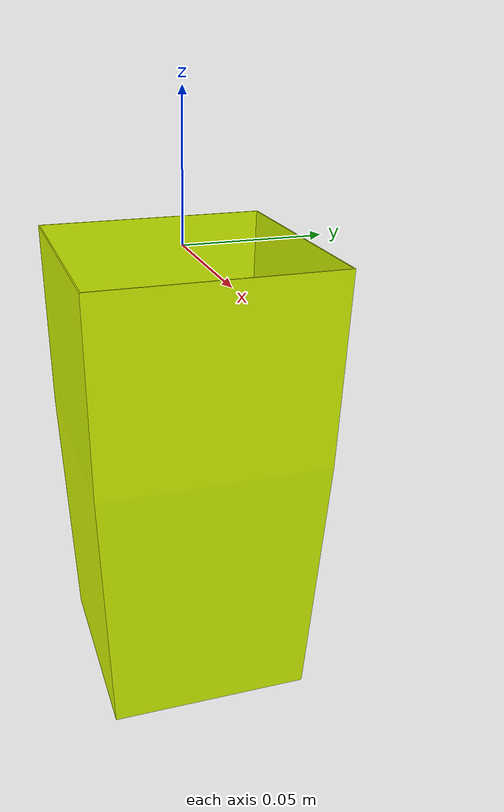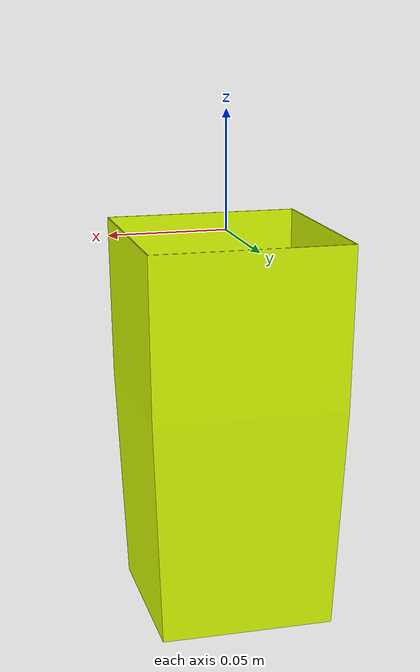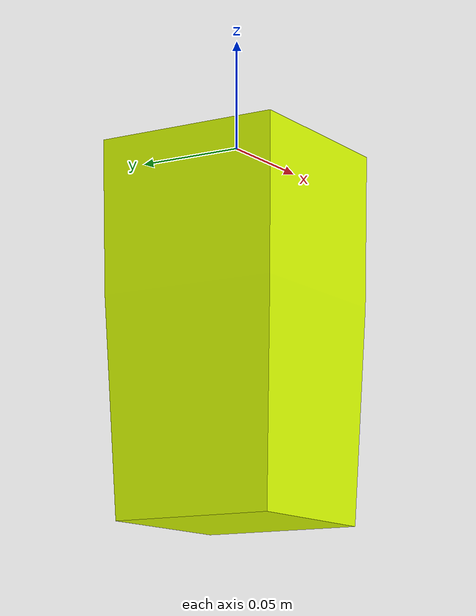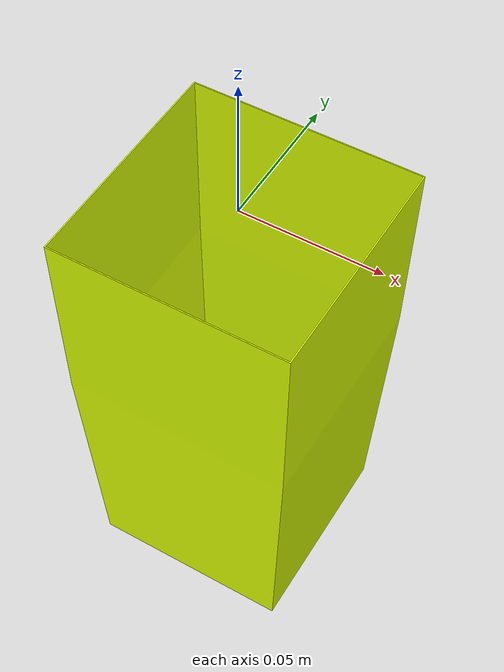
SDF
<?xml version="1.0"?>
<sdf version='1.7'>
  <model name='competition_cleanup_cup'>
    <static>false</static>

    <link name='base_link'>
      <pose>0 0 0 0 -0 0</pose>

      <inertial>
        <pose>0.000000 0.000000 -0.089267 0 0 0</pose>
        <mass>0.1</mass>
        <inertia>
          <ixx>0.00025</ixx> <ixy>0</ixy> <ixz>0</ixz>
          <iyy>0.00025</iyy> <iyz>0</iyz>
          <izz>0.00009</izz>
        </inertia>
      </inertial>

      <collision name='base_link_collision'>
        <geometry>
          <mesh><uri>model://competition_cleanup_cup/meshes/cup.dae</uri></mesh>
        </geometry>
      </collision>
      <visual name='base_link_visual'>
        <geometry>
          <mesh><uri>model://competition_cleanup_cup/meshes/cup.dae</uri></mesh>
        </geometry>
      </visual>
    </link>

    <plugin name="hydrodynamics" filename="libhydrodynamics_plugin.so"></plugin>

    <base_link>base_link</base_link>

    <neutrally_buoyant>0</neutrally_buoyant>

    <volume>0.0009</volume>

    <center_of_buoyancy>0.0 0.0 -0.083</center_of_buoyancy>

    <hydrodynamic_model>
      <scalingBuoyancy>1.0</scalingBuoyancy>
      <scalingDamping>1.0</scalingDamping>
      <scalingAddedMass>1.0</scalingAddedMass>

      <added_mass>
        0.9 0 0 0 0 0
        0 0.9 0 0 0 0
        0 0 0.9 0 0 0
        0 0 0 0.002 0 0
        0 0 0 0 0.002 0
        0 0 0 0 0 0.002
      </added_mass>

      <linear_damping>
        -5.0 -5.0 -5.0 -1.0 -1.0 -1.0
      </linear_damping>

      <quadratic_damping>
        -10.0 -10.0 -10.0 -2.0 -2.0 -2.0
      </quadratic_damping>
    </hydrodynamic_model>

  </model>
</sdf>
